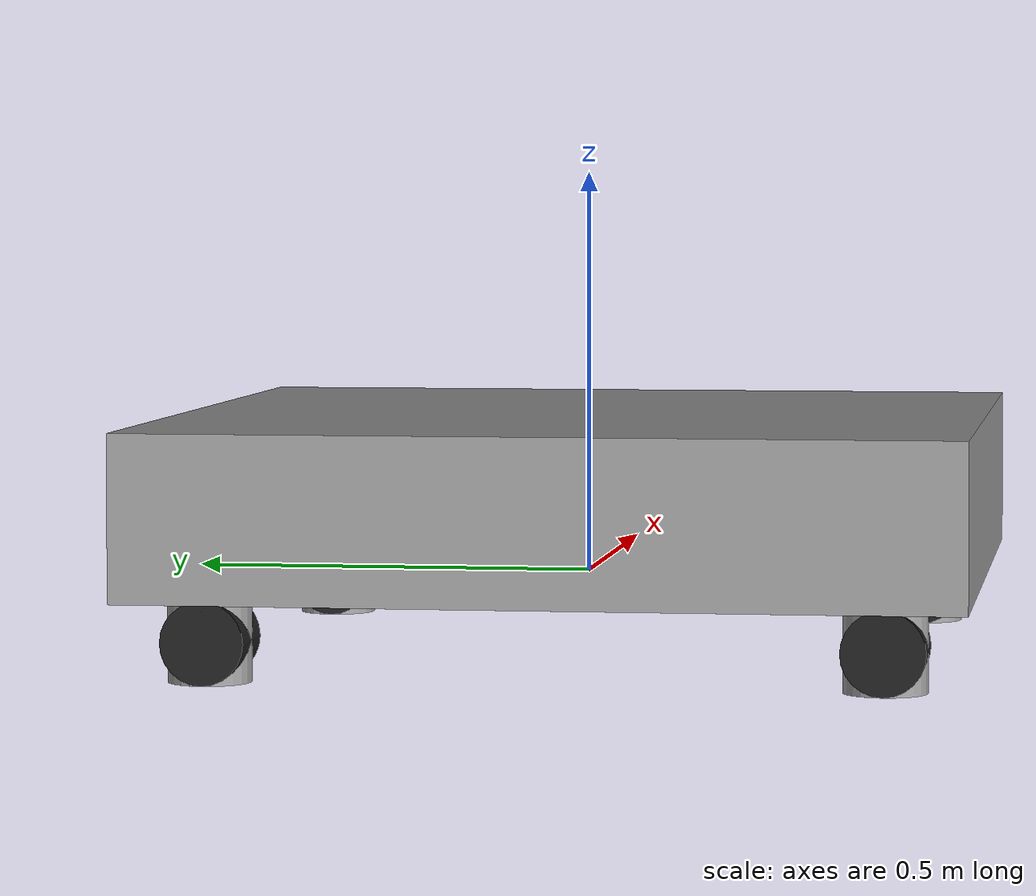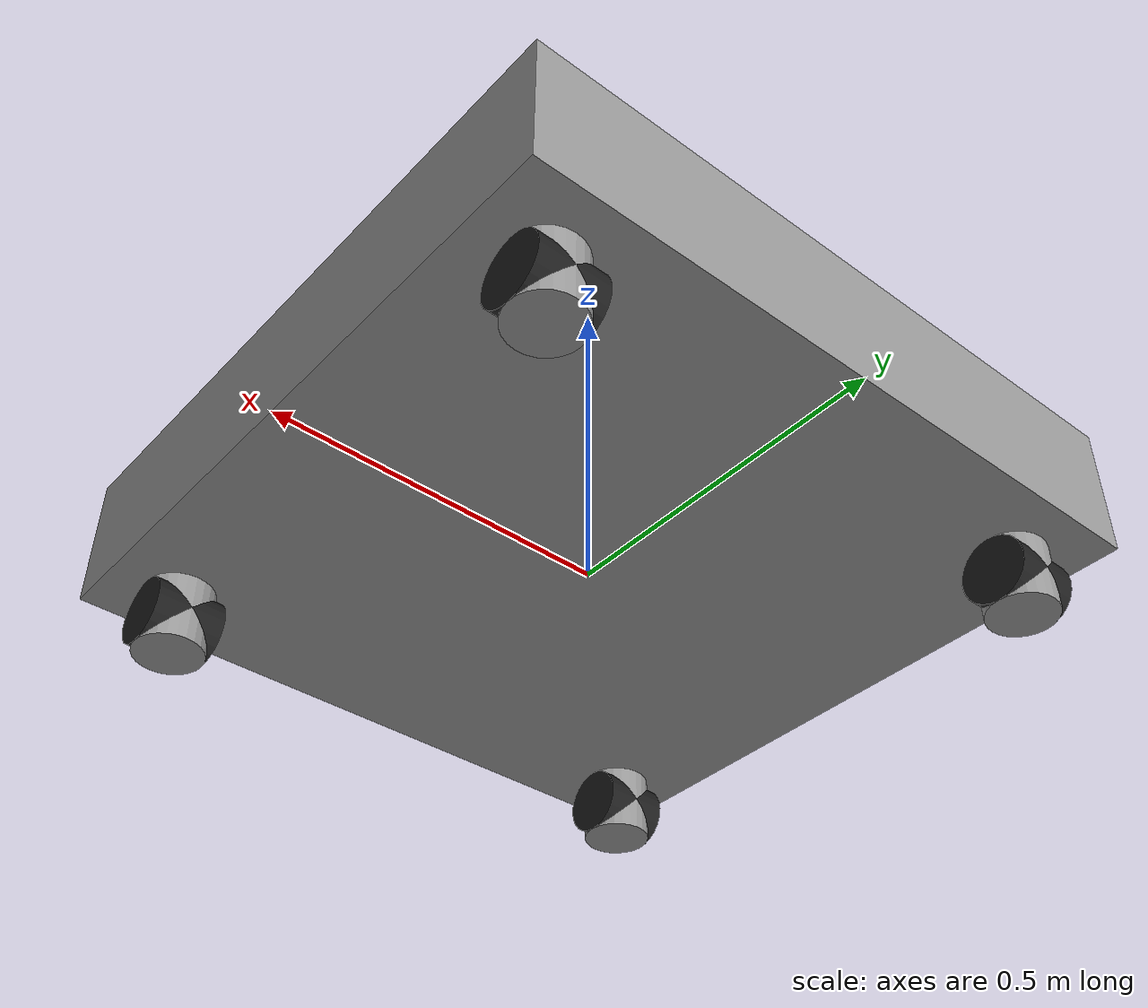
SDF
<?xml version="1.0" ?>
<sdf version="1.6">
  <model name="mobile_base">
    <static>false</static>

    <!-- Base Link -->
    <link name="base_link">
      <pose>0 0 0.1 0 0 0</pose>
      <inertial>
        <mass>10.0</mass>
        <inertia>
          <ixx>1.0</ixx>
          <iyy>1.0</iyy>
          <izz>1.0</izz>
          <ixy>0.0</ixy>
          <ixz>0.0</ixz>
          <iyz>0.0</iyz>
        </inertia>
      </inertial>
      <collision name="base_collision">
        <geometry>
          <box>
            <size>1.0 1.0 0.2</size>
          </box>
        </geometry>
      </collision>
      <visual name="base_visual">
        <geometry>
          <box>
            <size>1.0 1.0 0.2</size>
          </box>
        </geometry>
        <material>
          <script>
            <uri>file://media/materials/scripts/gazebo.material</uri>
            <name>Gazebo/Gray</name>
          </script>
        </material>
      </visual>
    </link>

    <!-- Caster 1 and Wheel -->
    <link name="caster1">
      <pose>-0.4 -0.4 0.0 0 0 0</pose>
      <collision name="caster1_collision">
        <geometry>
          <cylinder>
            <radius>0.05</radius>
            <length>0.2</length>
          </cylinder>
        </geometry>
      </collision>
      <visual name="caster1_visual">
        <geometry>
          <cylinder>
            <radius>0.05</radius>
            <length>0.2</length>
          </cylinder>
        </geometry>
        <material>
          <script>
            <uri>file://media/materials/scripts/gazebo.material</uri>
            <name>Gazebo/Gray</name>
          </script>
        </material>
      </visual>
    </link>

    <joint name="caster1_swivel" type="revolute">
      <parent>base_link</parent>
      <child>caster1</child>
      <axis>
        <xyz>0 0 1</xyz>
      </axis>
    </joint>

    <link name="segway1_wheel">
      <pose>-0.4 -0.4 -0.05 0 1.5708 0</pose> <!-- Upright wheel -->
      <collision name="segway1_wheel_collision">
        <geometry>
          <cylinder>
            <radius>0.05</radius>
            <length>0.1</length>
          </cylinder>
        </geometry>
      </collision>
      <visual name="segway1_wheel_visual">
        <geometry>
          <cylinder>
            <radius>0.05</radius>
            <length>0.1</length>
          </cylinder>
        </geometry>
        <material>
          <script>
            <uri>file://media/materials/scripts/gazebo.material</uri>
            <name>Gazebo/Black</name>
          </script>
        </material>
      </visual>
    </link>

    <joint name="segway1_wheel_joint" type="revolute">
      <parent>caster1</parent>
      <child>segway1_wheel</child>
      <axis>
        <xyz>1 0 0</xyz> <!-- Axis for upright wheel -->
      </axis>
    </joint>

    <!-- Caster 2 and Wheel -->
    <link name="caster2">
      <pose>0.4 -0.4 0.0 0 0 0</pose>
      <collision name="caster2_collision">
        <geometry>
          <cylinder>
            <radius>0.05</radius>
            <length>0.2</length>
          </cylinder>
        </geometry>
      </collision>
      <visual name="caster2_visual">
        <geometry>
          <cylinder>
            <radius>0.05</radius>
            <length>0.2</length>
          </cylinder>
        </geometry>
        <material>
          <script>
            <uri>file://media/materials/scripts/gazebo.material</uri>
            <name>Gazebo/Gray</name>
          </script>
        </material>
      </visual>
    </link>

    <joint name="caster2_swivel" type="revolute">
      <parent>base_link</parent>
      <child>caster2</child>
      <axis>
        <xyz>0 0 1</xyz>
      </axis>
    </joint>

    <link name="segway2_wheel">
      <pose>0.4 -0.4 -0.05 0 1.5708 0</pose> <!-- Upright wheel -->
      <collision name="segway2_wheel_collision">
        <geometry>
          <cylinder>
            <radius>0.05</radius>
            <length>0.1</length>
          </cylinder>
        </geometry>
      </collision>
      <visual name="segway2_wheel_visual">
        <geometry>
          <cylinder>
            <radius>0.05</radius>
            <length>0.1</length>
          </cylinder>
        </geometry>
        <material>
          <script>
            <uri>file://media/materials/scripts/gazebo.material</uri>
            <name>Gazebo/Black</name>
          </script>
        </material>
      </visual>
    </link>

    <joint name="segway2_wheel_joint" type="revolute">
      <parent>caster2</parent>
      <child>segway2_wheel</child>
      <axis>
        <xyz>1 0 0</xyz> <!-- Axis for upright wheel -->
      </axis>
    </joint>

    <!-- Caster 3 and Wheel -->
    <link name="caster3">
      <pose>-0.4 0.4 0.0 0 0 0</pose>
      <collision name="caster3_collision">
        <geometry>
          <cylinder>
            <radius>0.05</radius>
            <length>0.2</length>
          </cylinder>
        </geometry>
      </collision>
      <visual name="caster3_visual">
        <geometry>
          <cylinder>
            <radius>0.05</radius>
            <length>0.2</length>
          </cylinder>
        </geometry>
        <material>
          <script>
            <uri>file://media/materials/scripts/gazebo.material</uri>
            <name>Gazebo/Gray</name>
          </script>
        </material>
      </visual>
    </link>

    <joint name="caster3_swivel" type="revolute">
      <parent>base_link</parent>
      <child>caster3</child>
      <axis>
        <xyz>0 0 1</xyz>
      </axis>
    </joint>

    <link name="segway3_wheel">
      <pose>-0.4 0.4 -0.05 0 1.5708 0</pose> <!-- Upright wheel -->
      <collision name="segway3_wheel_collision">
        <geometry>
          <cylinder>
            <radius>0.05</radius>
            <length>0.1</length>
          </cylinder>
        </geometry>
      </collision>
      <visual name="segway3_wheel_visual">
        <geometry>
          <cylinder>
            <radius>0.05</radius>
            <length>0.1</length>
          </cylinder>
        </geometry>
        <material>
          <script>
            <uri>file://media/materials/scripts/gazebo.material</uri>
            <name>Gazebo/Black</name>
          </script>
        </material>
      </visual>
    </link>

    <joint name="segway3_wheel_joint" type="revolute">
      <parent>caster3</parent>
      <child>segway3_wheel</child>
      <axis>
        <xyz>1 0 0</xyz> <!-- Axis for upright wheel -->
      </axis>
    </joint>

    <!-- Caster 4 and Wheel -->
    <link name="caster4">
      <pose>0.4 0.4 0.0 0 0 0</pose>
      <collision name="caster4_collision">
        <geometry>
          <cylinder>
            <radius>0.05</radius>
            <length>0.2</length>
          </cylinder>
        </geometry>
      </collision>
      <visual name="caster4_visual">
        <geometry>
          <cylinder>
            <radius>0.05</radius>
            <length>0.2</length>
          </cylinder>
        </geometry>
        <material>
          <script>
            <uri>file://media/materials/scripts/gazebo.material</uri>
            <name>Gazebo/Gray</name>
          </script>
        </material>
      </visual>
    </link>

    <joint name="caster4_swivel" type="revolute">
      <parent>base_link</parent>
      <child>caster4</child>
      <axis>
        <xyz>0 0 1</xyz>
      </axis>
    </joint>

    <link name="segway4_wheel">
      <pose>0.4 0.4 -0.05 0 1.5708 0</pose> <!-- Upright wheel -->
      <collision name="segway4_wheel_collision">
        <geometry>
          <cylinder>
            <radius>0.05</radius>
            <length>0.1</length>
          </cylinder>
        </geometry>
      </collision>
      <visual name="segway4_wheel_visual">
        <geometry>
          <cylinder>
            <radius>0.05</radius>
            <length>0.1</length>
          </cylinder>
        </geometry>
        <material>
          <script>
            <uri>file://media/materials/scripts/gazebo.material</uri>
            <name>Gazebo/Black</name>
          </script>
        </material>
      </visual>
    </link>

    <joint name="segway4_wheel_joint" type="revolute">
      <parent>caster4</parent>
      <child>segway4_wheel</child>
      <axis>
        <xyz>1 0 0</xyz> <!-- Axis for upright wheel -->
      </axis>
    </joint>

  </model>
</sdf>
